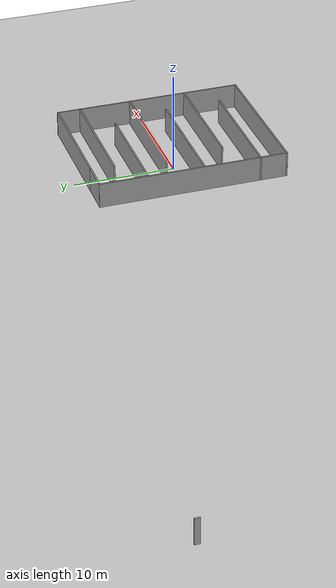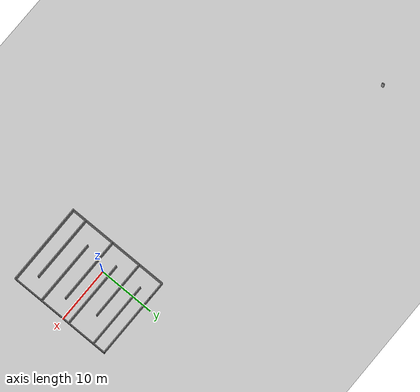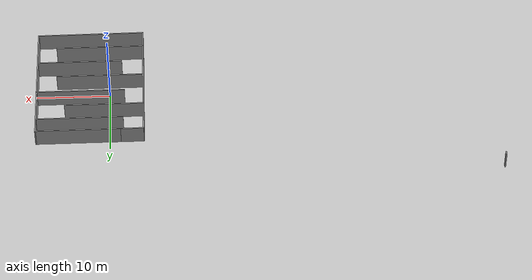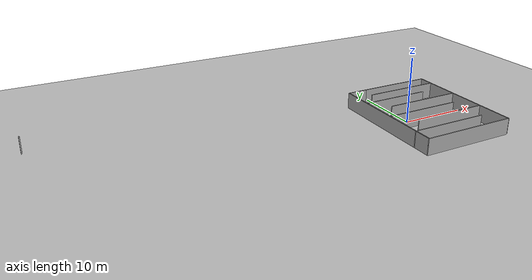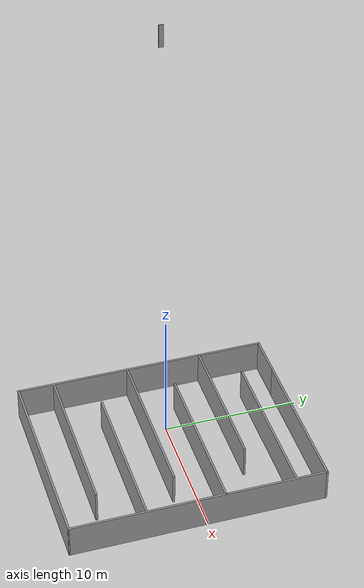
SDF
<sdf version="1.7">
 <world name="default">
  <scene><ambient>0.4 0.4 0.4 1</ambient><background>0.7 0.7 0.7 1</background><shadows>1</shadows></scene>
  <light name="sun" type="directional">
   <pose>0 0 10 0 -0 0</pose>
   <diffuse>0.8 0.8 0.8 1</diffuse>
   <specular>0.2 0.2 0.2 1</specular>
   <attenuation>
    <range>1000</range>
    <constant>0.9</constant>
    <linear>0.01</linear>
    <quadratic>0.001</quadratic>
   </attenuation>
   <direction>-0.5 0.1 -0.9</direction>
   <spot><inner_angle>0</inner_angle><outer_angle>0</outer_angle><falloff>0</falloff></spot>
  </light>
  <model name="ground_plane">
   <static>1</static>
   <link name="link">
    <collision name="collision">
     <geometry><plane><normal>0 0 1</normal><size>100 100</size></plane></geometry>
     <surface><friction><ode><mu>100</mu><mu2>50</mu2></ode></friction></surface>
    </collision>
    <visual name="visual">
     <cast_shadows>0</cast_shadows>
     <geometry><plane><normal>0 0 1</normal><size>100 100</size></plane></geometry>
     <material>
      <script><uri>file://media/materials/scripts/gazebo.material</uri><name>Gazebo/Grey</name></script>
     </material>
    </visual>
   </link>
  </model>
  <physics type="ode">
   <real_time_update_rate>0</real_time_update_rate>
   <max_step_size>0.001</max_step_size>
   <real_time_factor>1</real_time_factor>
   <ode>
    <solver>
     <type>quick</type>
     <iters>150</iters>
     <precon_iters>0</precon_iters>
     <sor>1.4</sor>
     <use_dynamic_moi_rescaling>1</use_dynamic_moi_rescaling>
    </solver>
    <constraints>
     <cfm>1e-05</cfm>
     <erp>0.2</erp>
     <contact_max_correcting_vel>2000</contact_max_correcting_vel>
     <contact_surface_layer>0.01</contact_surface_layer>
    </constraints>
   </ode>
  </physics>
  <gravity>0 0 -9.8</gravity>
  <magnetic_field>6e-06 2.3e-05 -4.2e-05</magnetic_field>
  <atmosphere type="adiabatic"/>
  <spherical_coordinates>
   <surface_model>EARTH_WGS84</surface_model>
   <latitude_deg>0</latitude_deg>
   <longitude_deg>0</longitude_deg>
   <elevation>0</elevation>
   <heading_deg>0</heading_deg>
  </spherical_coordinates>
  <model name="Base_square">
   <pose>-21.2675 2.85477 0 0 -0 0</pose>
   <link name="Wall_17">
    <collision name="Wall_17_Collision">
     <geometry><box><size>18.75 0.15 2.5</size></box></geometry>
     <pose>0 0 1.25 0 -0 0</pose>
    </collision>
    <visual name="Wall_17_Visual">
     <pose>0 0 1.25 0 -0 0</pose>
     <geometry><box><size>18.75 0.15 2.5</size></box></geometry>
     <material>
      <script><uri>file://media/materials/scripts/gazebo.material</uri><name>Gazebo/Grey</name></script>
      <ambient>1 1 1 1</ambient>
     </material>
     <meta><layer>0</layer></meta>
    </visual>
    <pose>16.7268 -3.44544 0 0 -0 -1.5708</pose>
   </link>
   <link name="Wall_18">
    <collision name="Wall_18_Collision">
     <geometry><box><size>14.6395 0.15 2.5</size></box></geometry>
     <pose>0 0 1.25 0 -0 0</pose>
    </collision>
    <visual name="Wall_18_Visual">
     <pose>0 0 1.25 0 -0 0</pose>
     <geometry><box><size>14.6395 0.15 2.5</size></box></geometry>
     <material>
      <script><uri>file://media/materials/scripts/gazebo.material</uri><name>Gazebo/Grey</name></script>
      <ambient>1 1 1 1</ambient>
     </material>
     <meta><layer>0</layer></meta>
    </visual>
    <pose>23.9714 -12.7722 0 0 -0 0.003693</pose>
   </link>
   <link name="Wall_19">
    <collision name="Wall_19_Collision">
     <geometry><box><size>18.75 0.15 2.5</size></box></geometry>
     <pose>0 0 1.25 0 -0 0</pose>
    </collision>
    <visual name="Wall_19_Visual">
     <pose>0 0 1.25 0 -0 0</pose>
     <geometry><box><size>18.75 0.15 2.5</size></box></geometry>
     <material>
      <script><uri>file://media/materials/scripts/gazebo.material</uri><name>Gazebo/Grey</name></script>
      <ambient>1 1 1 1</ambient>
     </material>
     <meta><layer>0</layer></meta>
    </visual>
    <pose>31.216 -3.44544 0 0 -0 1.5708</pose>
   </link>
   <link name="Wall_20">
    <collision name="Wall_20_Collision">
     <geometry><box><size>11.5 0.15 2.5</size></box></geometry>
     <pose>0 0 1.25 0 -0 0</pose>
    </collision>
    <visual name="Wall_20_Visual">
     <pose>0 0 1.25 0 -0 0</pose>
     <geometry><box><size>11.5 0.15 2.5</size></box></geometry>
     <material>
      <script><uri>file://media/materials/scripts/gazebo.material</uri><name>Gazebo/Grey</name></script>
      <ambient>1 1 1 1</ambient>
     </material>
     <meta><layer>0</layer></meta>
    </visual>
    <pose>25.541 5.85456 0 0 -0 3.14159</pose>
   </link>
   <link name="Wall_32">
    <collision name="Wall_32_Collision">
     <geometry><box><size>3.25 0.15 2.5</size></box></geometry>
     <pose>0 0 1.25 0 -0 0</pose>
    </collision>
    <visual name="Wall_32_Visual">
     <pose>0 0 1.25 0 -0 0</pose>
     <geometry><box><size>3.25 0.15 2.5</size></box></geometry>
     <material>
      <script><uri>file://media/materials/scripts/gazebo.material</uri><name>Gazebo/Grey</name></script>
      <ambient>1 1 1 1</ambient>
     </material>
     <meta><layer>0</layer></meta>
    </visual>
    <pose>18.316 5.85456 0 0 -0 3.14159</pose>
   </link>
   <link name="Wall_8">
    <collision name="Wall_8_Collision">
     <geometry><box><size>0.5 0.15 2.5</size></box></geometry>
     <pose>0 0 1.25 0 -0 0</pose>
    </collision>
    <visual name="Wall_8_Visual">
     <pose>0 0 1.25 0 -0 0</pose>
     <geometry><box><size>0.5 0.15 2.5</size></box></geometry>
     <material>
      <script><uri>file://media/materials/scripts/gazebo.material</uri><name>Gazebo/Grey</name></script>
      <ambient>1 1 1 1</ambient>
     </material>
     <meta><layer>0</layer></meta>
    </visual>
    <pose>-31.2164 12.6242 0 0 -0 -1.5708</pose>
   </link>
   <static>1</static>
  </model>
  <model name="simple_maze">
   <pose>2.69243 -0.414579 0 0 -0 0</pose>
   <link name="Wall_43">
    <collision name="Wall_43_Collision">
     <geometry><box><size>12 0.15 2.5</size></box></geometry>
     <pose>0 0 1.25 0 -0 0</pose>
    </collision>
    <visual name="Wall_43_Visual">
     <pose>0 0 1.25 0 -0 0</pose>
     <geometry><box><size>12 0.15 2.5</size></box></geometry>
     <material>
      <script><uri>file://media/materials/scripts/gazebo.material</uri><name>Gazebo/Grey</name></script>
      <ambient>1 1 1 1</ambient>
     </material>
     <meta><layer>0</layer></meta>
    </visual>
    <pose>-1.30934 -6.86414 0 0 -0 3.14159</pose>
   </link>
   <link name="Wall_49">
    <collision name="Wall_49_Collision">
     <geometry><box><size>11.5 0.15 2.5</size></box></geometry>
     <pose>0 0 1.25 0 -0 0</pose>
    </collision>
    <visual name="Wall_49_Visual">
     <pose>0 0 1.25 0 -0 0</pose>
     <geometry><box><size>11.5 0.15 2.5</size></box></geometry>
     <material>
      <script><uri>file://media/materials/scripts/gazebo.material</uri><name>Gazebo/Grey</name></script>
      <ambient>1 1 1 1</ambient>
     </material>
     <meta><layer>0</layer></meta>
    </visual>
    <pose>1.42264 -4.00406 0 0 -0 0</pose>
   </link>
   <link name="Wall_55">
    <collision name="Wall_55_Collision">
     <geometry><box><size>11.75 0.15 2.5</size></box></geometry>
     <pose>0 0 1.25 0 -0 0</pose>
    </collision>
    <visual name="Wall_55_Visual">
     <pose>0 0 1.25 0 -0 0</pose>
     <geometry><box><size>11.75 0.15 2.5</size></box></geometry>
     <material>
      <script><uri>file://media/materials/scripts/gazebo.material</uri><name>Gazebo/Grey</name></script>
      <ambient>1 1 1 1</ambient>
     </material>
     <meta><layer>0</layer></meta>
    </visual>
    <pose>-1.28849 -1.23897 0 0 -0 3.14159</pose>
   </link>
   <link name="Wall_57">
    <collision name="Wall_57_Collision">
     <geometry><box><size>12 0.15 2.5</size></box></geometry>
     <pose>0 0 1.25 0 -0 0</pose>
    </collision>
    <visual name="Wall_57_Visual">
     <pose>0 0 1.25 0 -0 0</pose>
     <geometry><box><size>12 0.15 2.5</size></box></geometry>
     <material>
      <script><uri>file://media/materials/scripts/gazebo.material</uri><name>Gazebo/Grey</name></script>
      <ambient>1 1 1 1</ambient>
     </material>
     <meta><layer>0</layer></meta>
    </visual>
    <pose>1.30934 1.69286 0 0 -0 3.14159</pose>
   </link>
   <link name="Wall_60">
    <collision name="Wall_60_Collision">
     <geometry><box><size>10.75 0.15 2.5</size></box></geometry>
     <pose>0 0 1.25 0 -0 0</pose>
    </collision>
    <visual name="Wall_60_Visual">
     <pose>0 0 1.25 0 -0 0</pose>
     <geometry><box><size>10.75 0.15 2.5</size></box></geometry>
     <material>
      <script><uri>file://media/materials/scripts/gazebo.material</uri><name>Gazebo/Grey</name></script>
      <ambient>1 1 1 1</ambient>
     </material>
     <meta><layer>0</layer></meta>
    </visual>
    <pose>-1.92413 4.36644 0 0 -0 0</pose>
   </link>
   <link name="Wall_64">
    <collision name="Wall_64_Collision">
     <geometry><box><size>11.75 0.15 2.5</size></box></geometry>
     <pose>0 0 1.25 0 -0 0</pose>
    </collision>
    <visual name="Wall_64_Visual">
     <pose>0 0 1.25 0 -0 0</pose>
     <geometry><box><size>11.75 0.15 2.5</size></box></geometry>
     <material>
      <script><uri>file://media/materials/scripts/gazebo.material</uri><name>Gazebo/Grey</name></script>
      <ambient>1 1 1 1</ambient>
     </material>
     <meta><layer>0</layer></meta>
    </visual>
    <pose>1.3438 6.86414 0 0 -0 3.14159</pose>
   </link>
   <static>1</static>
  </model>
  <plugin name="gazebo_occupancy_map" filename="libgazebo_2Dmap_plugin.so">
   <map_resolution>0.02</map_resolution>
   <map_height>0.7</map_height>
   <map_size_x>20</map_size_x>
   <map_size_y>20</map_size_y>
   <init_robot_x>0</init_robot_x>
   <init_robot_y>0</init_robot_y>
  </plugin>
 </world>
</sdf>
